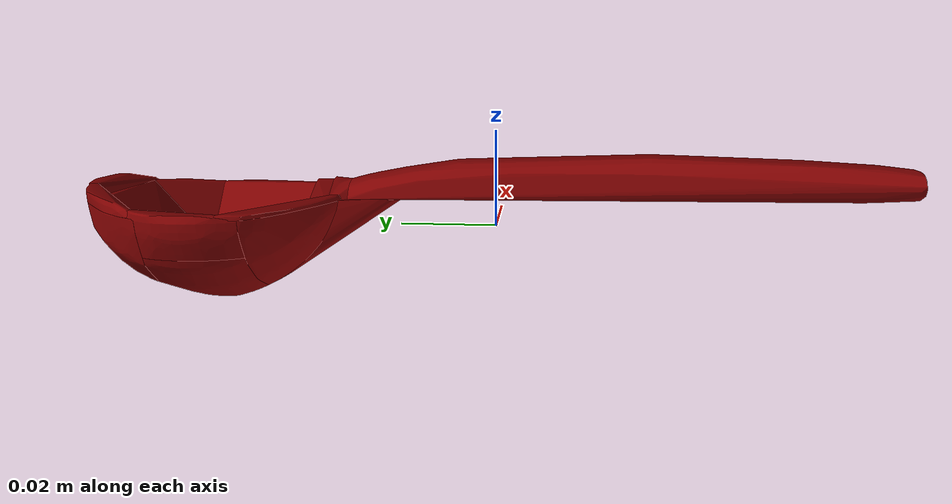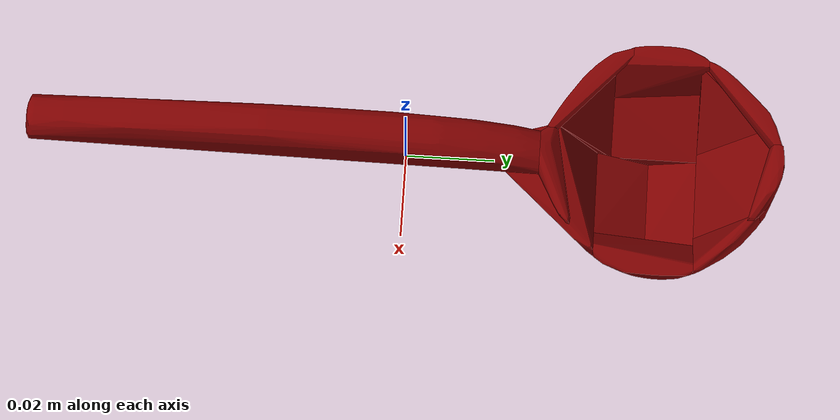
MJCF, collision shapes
<mujoco model="spoon_32">
  <asset>
    <mesh file="visual/model_normalized_0.obj" name="model_normalized_0_vis" scale="0.16999999999999998 0.16999999999999998 0.16999999999999998" refquat="-3.925231146709431e-17 1.1775693440128314e-16 0.7071067811865472 0.7071067811865474"/>
    <mesh file="visual/model_normalized_1.obj" name="model_normalized_1_vis" scale="0.16999999999999998 0.16999999999999998 0.16999999999999998" refquat="-3.925231146709431e-17 1.1775693440128314e-16 0.7071067811865472 0.7071067811865474"/>
    <mesh file="visual/model_normalized_2.obj" name="model_normalized_2_vis" scale="0.16999999999999998 0.16999999999999998 0.16999999999999998" refquat="-3.925231146709431e-17 1.1775693440128314e-16 0.7071067811865472 0.7071067811865474"/>
    <texture type="2d" name="image6" file="visual/image6.png"/>
    <texture type="2d" name="image3" file="visual/image3.png"/>
    <texture type="2d" name="image0" file="visual/image0.png"/>
    <material name="aiShadowMatte1" texture="image6" specular="0.9" shininess="0.85"/>
    <material name="aiStandardSurface1.002" texture="image3" specular="0.9" shininess="0.85"/>
    <material name="aiStandardSurface2.003" texture="image0" specular="0.9" shininess="0.85"/>
    <mesh file="collision/collision_mesh_collision_0.obj" name="spoon_collision_mesh_0" scale="0.16999999999999998 0.16999999999999998 0.16999999999999998" refquat="-3.925231146709431e-17 1.1775693440128314e-16 0.7071067811865472 0.7071067811865474"/>
    <mesh file="collision/collision_mesh_collision_1.obj" name="spoon_collision_mesh_1" scale="0.16999999999999998 0.16999999999999998 0.16999999999999998" refquat="-3.925231146709431e-17 1.1775693440128314e-16 0.7071067811865472 0.7071067811865474"/>
    <mesh file="collision/collision_mesh_collision_2.obj" name="spoon_collision_mesh_2" scale="0.16999999999999998 0.16999999999999998 0.16999999999999998" refquat="-3.925231146709431e-17 1.1775693440128314e-16 0.7071067811865472 0.7071067811865474"/>
    <mesh file="collision/collision_mesh_collision_3.obj" name="spoon_collision_mesh_3" scale="0.16999999999999998 0.16999999999999998 0.16999999999999998" refquat="-3.925231146709431e-17 1.1775693440128314e-16 0.7071067811865472 0.7071067811865474"/>
    <mesh file="collision/collision_mesh_collision_4.obj" name="spoon_collision_mesh_4" scale="0.16999999999999998 0.16999999999999998 0.16999999999999998" refquat="-3.925231146709431e-17 1.1775693440128314e-16 0.7071067811865472 0.7071067811865474"/>
    <mesh file="collision/collision_mesh_collision_5.obj" name="spoon_collision_mesh_5" scale="0.16999999999999998 0.16999999999999998 0.16999999999999998" refquat="-3.925231146709431e-17 1.1775693440128314e-16 0.7071067811865472 0.7071067811865474"/>
    <mesh file="collision/collision_mesh_collision_6.obj" name="spoon_collision_mesh_6" scale="0.16999999999999998 0.16999999999999998 0.16999999999999998" refquat="-3.925231146709431e-17 1.1775693440128314e-16 0.7071067811865472 0.7071067811865474"/>
    <mesh file="collision/collision_mesh_collision_7.obj" name="spoon_collision_mesh_7" scale="0.16999999999999998 0.16999999999999998 0.16999999999999998" refquat="-3.925231146709431e-17 1.1775693440128314e-16 0.7071067811865472 0.7071067811865474"/>
    <mesh file="collision/collision_mesh_collision_8.obj" name="spoon_collision_mesh_8" scale="0.16999999999999998 0.16999999999999998 0.16999999999999998" refquat="-3.925231146709431e-17 1.1775693440128314e-16 0.7071067811865472 0.7071067811865474"/>
    <mesh file="collision/collision_mesh_collision_9.obj" name="spoon_collision_mesh_9" scale="0.16999999999999998 0.16999999999999998 0.16999999999999998" refquat="-3.925231146709431e-17 1.1775693440128314e-16 0.7071067811865472 0.7071067811865474"/>
    <mesh file="collision/collision_mesh_collision_10.obj" name="spoon_collision_mesh_10" scale="0.16999999999999998 0.16999999999999998 0.16999999999999998" refquat="-3.925231146709431e-17 1.1775693440128314e-16 0.7071067811865472 0.7071067811865474"/>
    <mesh file="collision/collision_mesh_collision_11.obj" name="spoon_collision_mesh_11" scale="0.16999999999999998 0.16999999999999998 0.16999999999999998" refquat="-3.925231146709431e-17 1.1775693440128314e-16 0.7071067811865472 0.7071067811865474"/>
    <mesh file="collision/collision_mesh_collision_12.obj" name="spoon_collision_mesh_12" scale="0.16999999999999998 0.16999999999999998 0.16999999999999998" refquat="-3.925231146709431e-17 1.1775693440128314e-16 0.7071067811865472 0.7071067811865474"/>
    <mesh file="collision/collision_mesh_collision_13.obj" name="spoon_collision_mesh_13" scale="0.16999999999999998 0.16999999999999998 0.16999999999999998" refquat="-3.925231146709431e-17 1.1775693440128314e-16 0.7071067811865472 0.7071067811865474"/>
    <mesh file="collision/collision_mesh_collision_14.obj" name="spoon_collision_mesh_14" scale="0.16999999999999998 0.16999999999999998 0.16999999999999998" refquat="-3.925231146709431e-17 1.1775693440128314e-16 0.7071067811865472 0.7071067811865474"/>
  </asset>
  <custom><text name="material_gt" data="metal"/></custom>
  <default>
    <default class="region">
      <geom group="1" conaffinity="0" contype="0" rgba="0 1 0 0"/>
    </default>
    <default class="collision">
      <geom group="0" rgba="0.5 0 0 0.5" density="1000.0"/>
    </default>
  </default>
  <worldbody>
    <body>
      <body name="object">
        <geom solimp="0.998 0.998 0.001" solref="0.001 1" density="100" friction="0.95 0.3 0.1" type="mesh" mesh="model_normalized_0_vis" conaffinity="0" contype="0" group="1" material="aiStandardSurface2.003"/>
        <geom solimp="0.998 0.998 0.001" solref="0.001 1" density="100" friction="0.95 0.3 0.1" type="mesh" mesh="model_normalized_1_vis" conaffinity="0" contype="0" group="1" material="aiStandardSurface1.002"/>
        <geom solimp="0.998 0.998 0.001" solref="0.001 1" density="100" friction="0.95 0.3 0.1" type="mesh" mesh="model_normalized_2_vis" conaffinity="0" contype="0" group="1" material="aiShadowMatte1"/>
        <geom class="region" name="reg_bbox" type="box" pos="-9.588084999998691e-05 -0.00017673115000000071 9.904625000000055e-05" size="0.028115551149999998 0.08575826204999998 0.014938007949999998"/>
        <geom mesh="spoon_collision_mesh_0" type="mesh" class="collision"/>
        <geom mesh="spoon_collision_mesh_1" type="mesh" class="collision"/>
        <geom mesh="spoon_collision_mesh_2" type="mesh" class="collision"/>
        <geom mesh="spoon_collision_mesh_3" type="mesh" class="collision"/>
        <geom mesh="spoon_collision_mesh_4" type="mesh" class="collision"/>
        <geom mesh="spoon_collision_mesh_5" type="mesh" class="collision"/>
        <geom mesh="spoon_collision_mesh_6" type="mesh" class="collision"/>
        <geom mesh="spoon_collision_mesh_7" type="mesh" class="collision"/>
        <geom mesh="spoon_collision_mesh_8" type="mesh" class="collision"/>
        <geom mesh="spoon_collision_mesh_9" type="mesh" class="collision"/>
        <geom mesh="spoon_collision_mesh_10" type="mesh" class="collision"/>
        <geom mesh="spoon_collision_mesh_11" type="mesh" class="collision"/>
        <geom mesh="spoon_collision_mesh_12" type="mesh" class="collision"/>
        <geom mesh="spoon_collision_mesh_13" type="mesh" class="collision"/>
        <geom mesh="spoon_collision_mesh_14" type="mesh" class="collision"/>
      </body>
    </body>
  </worldbody>
</mujoco>
